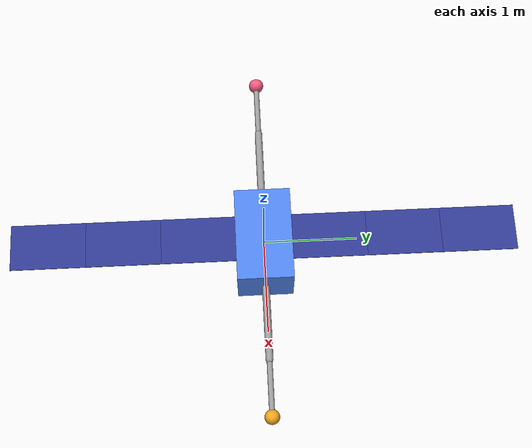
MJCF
<mujoco model="spacecraft_dual_arm_panels">
  <compiler angle="radian"/>
  <option timestep="0.005" gravity="0 0 0">
    <flag contact="enable"/>
  </option>

  <size njmax="200" nconmax="200"/>

  <default>
    <joint damping="0.5" armature="0.01"/>
    <geom condim="3" friction="0.5 0.005 0.0001"
          solref="0.005 1" solimp="0.9 0.95 0.001"
          rgba="0.6 0.6 0.6 1"/>
    <default class="panel_hinge">
      <joint type="hinge" axis="1 0 0" range="-0.05 3.2"
             stiffness="2.0" damping="0.3" springref="0"/>
    </default>
    <default class="panel_geom">
      <geom type="box" size="0.25 0.4 0.005" mass="2"
            contype="2" conaffinity="2" rgba="0.18 0.22 0.55 1"/>
    </default>
  </default>

  <worldbody>
    <body name="bus" pos="0 0 0">
      <freejoint name="base"/>
      <geom name="bus" type="box" size="0.5 0.3 0.3" mass="300"
            contype="1" conaffinity="1" rgba="0.3 0.5 0.9 1"/>

      <!-- ============ Arm A (+X face) ============ -->
      <body name="link1_a" pos="0.5 0 0">
        <joint name="shoulder_a" type="hinge" axis="0 1 0" range="-3.14 3.14"/>
        <geom name="upper_a" type="capsule" fromto="0 0 0 0.8 0 0" size="0.04"
              mass="5" contype="1" conaffinity="1"/>
        <body name="link2_a" pos="0.8 0 0">
          <joint name="elbow_a" type="hinge" axis="0 1 0" range="-3.14 3.14"/>
          <geom name="fore_a" type="capsule" fromto="0 0 0 0.6 0 0" size="0.03"
                mass="3" contype="1" conaffinity="1"/>
          <body name="ee_a" pos="0.6 0 0">
            <geom name="ee_sphere_a" type="sphere" size="0.08" mass="1"
                  rgba="0.95 0.65 0.1 1" contype="1" conaffinity="1"/>
          </body>
        </body>
      </body>

      <!-- ============ Arm B (-X face) ============ -->
      <body name="link1_b" pos="-0.5 0 0">
        <joint name="shoulder_b" type="hinge" axis="0 1 0" range="-3.14 3.14"/>
        <geom name="upper_b" type="capsule" fromto="0 0 0 -0.8 0 0" size="0.04"
              mass="5" contype="1" conaffinity="1"/>
        <body name="link2_b" pos="-0.8 0 0">
          <joint name="elbow_b" type="hinge" axis="0 1 0" range="-3.14 3.14"/>
          <geom name="fore_b" type="capsule" fromto="0 0 0 -0.6 0 0" size="0.03"
                mass="3" contype="1" conaffinity="1"/>
          <body name="ee_b" pos="-0.6 0 0">
            <geom name="ee_sphere_b" type="sphere" size="0.08" mass="1"
                  rgba="0.95 0.35 0.5 1" contype="1" conaffinity="1"/>
          </body>
        </body>
      </body>

      <!-- ============ +Y solar wing: 3 panels ============ -->
      <body name="wp_0" pos="0 0.3 0.16">
        <joint name="hp_0" class="panel_hinge"/>
        <geom name="panel_p_0" pos="0 0.4 0" class="panel_geom"/>
        <body name="wp_1" pos="0 0.8 0">
          <joint name="hp_1" class="panel_hinge"/>
          <geom name="panel_p_1" pos="0 0.4 0" class="panel_geom"/>
          <body name="wp_2" pos="0 0.8 0">
            <joint name="hp_2" class="panel_hinge"/>
            <geom name="panel_p_2" pos="0 0.4 0" class="panel_geom"/>
          </body>
        </body>
      </body>

      <!-- ============ -Y solar wing: 3 panels (mirrored) ============ -->
      <body name="wn_0" pos="0 -0.3 0.16">
        <joint name="hn_0" class="panel_hinge"/>
        <geom name="panel_n_0" pos="0 -0.4 0" class="panel_geom"/>
        <body name="wn_1" pos="0 -0.8 0">
          <joint name="hn_1" class="panel_hinge"/>
          <geom name="panel_n_1" pos="0 -0.4 0" class="panel_geom"/>
          <body name="wn_2" pos="0 -0.8 0">
            <joint name="hn_2" class="panel_hinge"/>
            <geom name="panel_n_2" pos="0 -0.4 0" class="panel_geom"/>
          </body>
        </body>
      </body>
    </body>
  </worldbody>

  <actuator>
    <position name="shoulder_a_pos" joint="shoulder_a" kp="80" kv="6"
              ctrlrange="-3.14 3.14"/>
    <position name="elbow_a_pos" joint="elbow_a" kp="60" kv="4"
              ctrlrange="-3.14 3.14"/>
    <position name="shoulder_b_pos" joint="shoulder_b" kp="80" kv="6"
              ctrlrange="-3.14 3.14"/>
    <position name="elbow_b_pos" joint="elbow_b" kp="60" kv="4"
              ctrlrange="-3.14 3.14"/>
  </actuator>
</mujoco>
